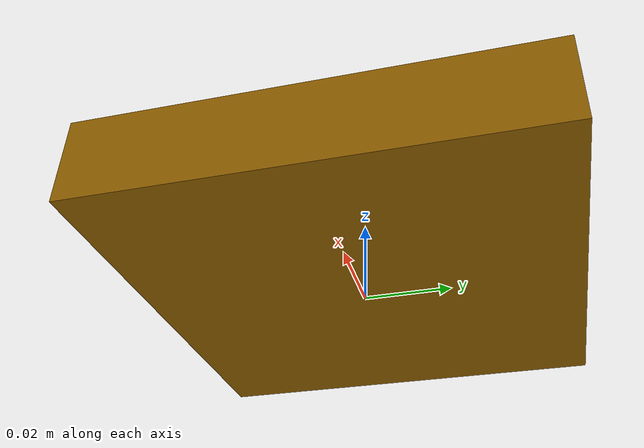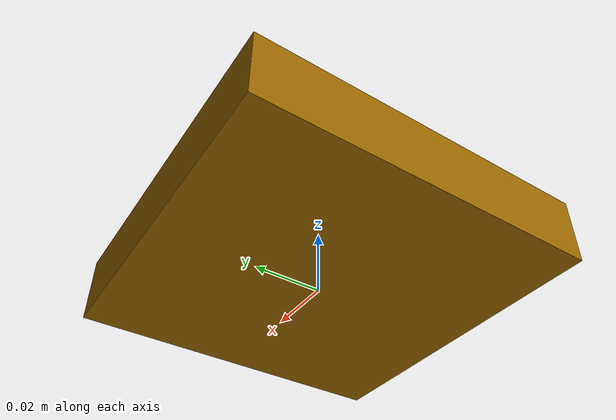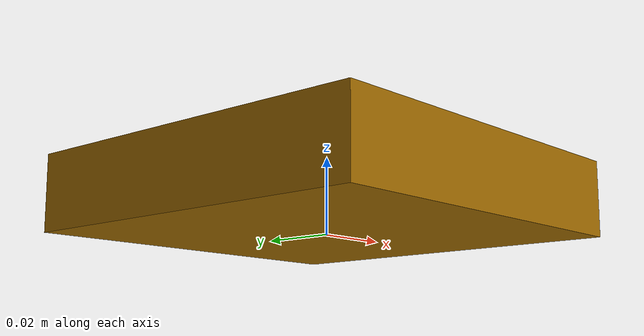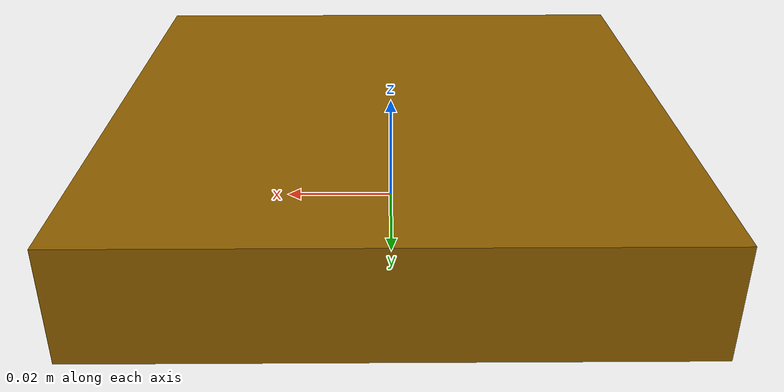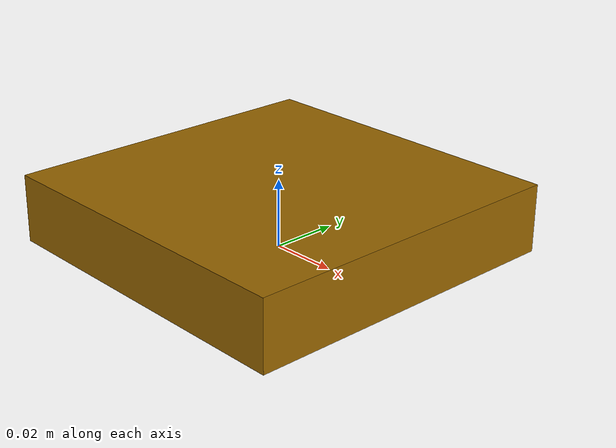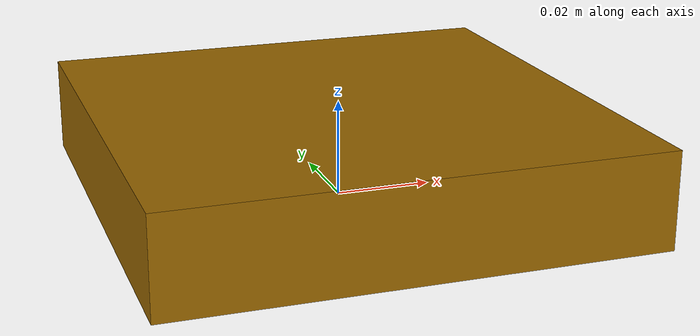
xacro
<?xml version="1.0"?>
<robot name="my_robot_arm" xmlns:xacro="http://www.ros.org/wiki/xacro">
    <xacro:include filename="common_properties.xacro" />
    <xacro:include filename="arm.xacro" />

    <link name="base_footprint" />

    <joint name="base_joint" type="fixed">
        <parent link="base_footprint" />
        <child link="arm_base_link" />
        <origin xyz="0 0 0" rpy="0 0 0"/>
    </joint>
</robot>

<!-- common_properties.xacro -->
<robot xmlns:xacro="http://www.ros.org/wiki/xacro">

    <material name="blue">
        <color rgba="0 0 0.5 1" />
    </material>

    <material name="grey">
        <color rgba="0.5 0.5 0.5 1" />
    </material>

    <material name="yellow">
        <color rgba="1 1 0 1" />
    </material>

    <material name="orange">
        <color rgba="0.6 0.4 0 1" />
    </material>

    <xacro:macro name="box_inertia" params="m l w h xyz rpy">
        <inertial>
            <origin xyz="${xyz}" rpy="${rpy}" />
            <mass value="${m}" />
            <inertia ixx="${(m/12) * (h*h + l*l)}" ixy="0" ixz="0"
                     iyy="${(m/12) * (w*w + l*l)}" iyz="0"
                     izz="${(m/12) * (w*w + h*h)}" />
        </inertial>
    </xacro:macro>

    <xacro:macro name="cylinder_inertia" params="m r h xyz rpy">
        <inertial>
            <origin xyz="${xyz}" rpy="${rpy}" />
            <mass value="${m}" />
            <inertia ixx="${(m/12) * (3*r*r + h*h)}" ixy="0" ixz="0"
                     iyy="${(m/12) * (3*r*r + h*h)}" iyz="0"
                     izz="${(m/2) * (r*r)}" />
        </inertial>
    </xacro:macro>

    <xacro:macro name="sphere_inertia" params="m r xyz rpy">
        <inertial>
            <origin xyz="${xyz}" rpy="${rpy}" />
            <mass value="${m}" />
            <inertia ixx="${(2/5) * m * r * r}" ixy="0" ixz="0"
                     iyy="${(2/5) * m * r * r}" iyz="0"
                     izz="${(2/5) * m * r * r}" />
        </inertial>
    </xacro:macro>

</robot>

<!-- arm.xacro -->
<robot name="my_robot_arm" xmlns:xacro="http://www.ros.org/wiki/xacro">
    <xacro:property name="base_length" value="0.1" />
    <xacro:property name="base_width" value="0.1" />
    <xacro:property name="base_height" value="0.02" />

    <link name="arm_base_link">
        <visual>
            <geometry>
                <box size="${base_length} ${base_width} ${base_height}" />
            </geometry>
            <origin xyz="0 0 ${base_height/2}" rpy="0 0 0" />
            <material name="orange" />
        </visual>
        <collision>
            <geometry>
                <box size="${base_length} ${base_width} ${base_height}" />
            </geometry>
            <origin xyz="0 0 ${base_height/2}" rpy="0 0 0" />
        </collision>
        <xacro:box_inertia m="1.0" l="${2*base_length}" w="${2*base_width}" h="${2*base_height}"
                           xyz="0 0 0" rpy="0 0 0" />
    </link>

</robot>
